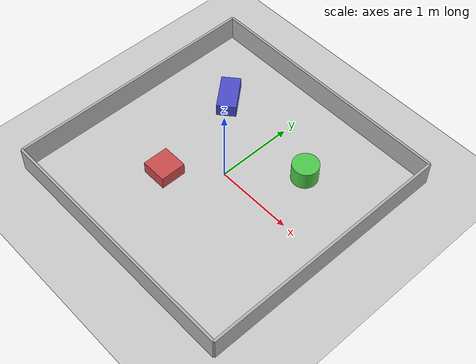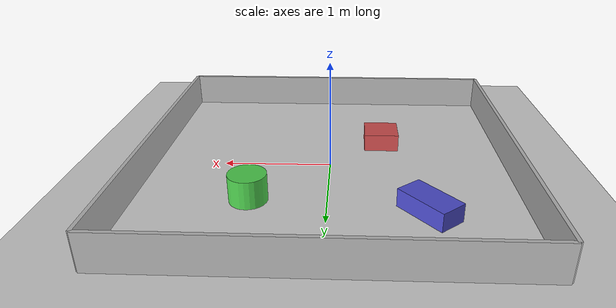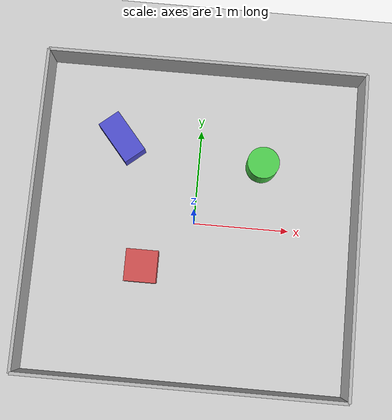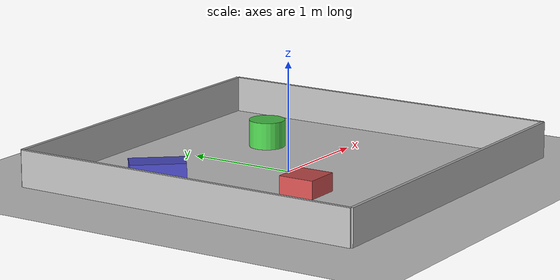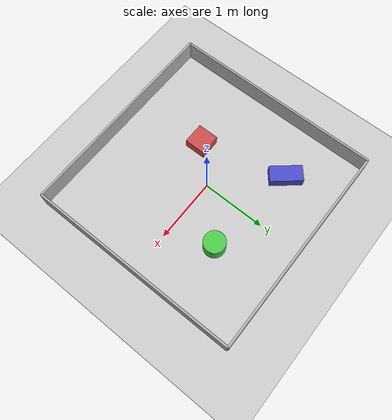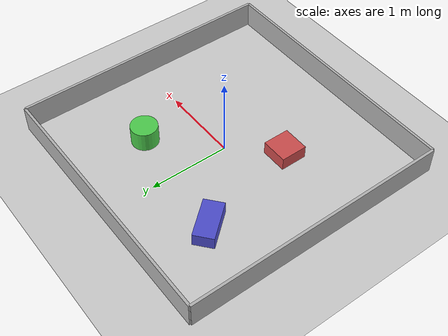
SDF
<sdf version="1.8">
 <world name="jetacker_world">
  <physics name="1ms" type="ignored">
   <max_step_size>0.001</max_step_size>
   <real_time_factor>1.0</real_time_factor>
  </physics>
  <plugin filename="gz-sim-physics-system" name="gz::sim::systems::Physics"/>
  <plugin filename="gz-sim-sensors-system" name="gz::sim::systems::Sensors">
   <render_engine>ogre2</render_engine>
  </plugin>
  <plugin filename="gz-sim-imu-system" name="gz::sim::systems::Imu"/>
  <plugin filename="gz-sim-user-commands-system" name="gz::sim::systems::UserCommands"/>
  <plugin filename="gz-sim-scene-broadcaster-system" name="gz::sim::systems::SceneBroadcaster"/>
  <plugin filename="libWorldStatePublisher" name="gz::sim::systems::WorldStatePublisher">
   <update_frequency>50</update_frequency>
   <model>
    <name>jetacker</name>
    <publish_pose>true</publish_pose>
    <publish_joints>true</publish_joints>
    <joint>front_left_wheel_steering_joint</joint>
    <joint>front_right_wheel_steering_joint</joint>
    <joint>rear_left_wheel_joint</joint>
    <joint>rear_right_wheel_joint</joint>
   </model>
  </plugin>
  <light type="directional" name="sun">
   <pose>0 0 10 0 0 0</pose>
   <diffuse>1 1 1 1</diffuse>
   <specular>0.5 0.5 0.5 1</specular>
   <direction>-0.5 0.1 -0.9</direction>
  </light>
  <model name="ground_plane">
   <static>true</static>
   <link name="link">
    <collision name="collision">
     <geometry><plane><normal>0 0 1</normal><size>100 100</size></plane></geometry>
     <surface><friction><ode><mu>1.0</mu><mu2>1.0</mu2></ode></friction></surface>
    </collision>
    <visual name="visual">
     <geometry><plane><normal>0 0 1</normal><size>100 100</size></plane></geometry>
     <material>
      <ambient>0.8 0.8 0.8 1</ambient>
      <diffuse>0.8 0.8 0.8 1</diffuse>
      <specular>0.1 0.1 0.1 1</specular>
     </material>
    </visual>
   </link>
  </model>
  <model name="wall_north">
   <static>true</static>
   <pose>0.000000 1.666667 0.166667 0 0 0</pose>
   <link name="link">
    <collision name="collision">
     <geometry><box><size>3.333333 0.033333 0.333333</size></box></geometry>
    </collision>
    <visual name="visual">
     <geometry><box><size>3.333333 0.033333 0.333333</size></box></geometry>
     <material><ambient>0.7 0.7 0.7 1</ambient><diffuse>0.7 0.7 0.7 1</diffuse></material>
    </visual>
   </link>
  </model>
  <model name="wall_south">
   <static>true</static>
   <pose>0.000000 -1.666667 0.166667 0 0 0</pose>
   <link name="link">
    <collision name="collision">
     <geometry><box><size>3.333333 0.033333 0.333333</size></box></geometry>
    </collision>
    <visual name="visual">
     <geometry><box><size>3.333333 0.033333 0.333333</size></box></geometry>
     <material><ambient>0.7 0.7 0.7 1</ambient><diffuse>0.7 0.7 0.7 1</diffuse></material>
    </visual>
   </link>
  </model>
  <model name="wall_east">
   <static>true</static>
   <pose>1.666667 0.000000 0.166667 0 0 0</pose>
   <link name="link">
    <collision name="collision">
     <geometry><box><size>0.033333 3.333333 0.333333</size></box></geometry>
    </collision>
    <visual name="visual">
     <geometry><box><size>0.033333 3.333333 0.333333</size></box></geometry>
     <material><ambient>0.7 0.7 0.7 1</ambient><diffuse>0.7 0.7 0.7 1</diffuse></material>
    </visual>
   </link>
  </model>
  <model name="wall_west">
   <static>true</static>
   <pose>-1.666667 0.000000 0.166667 0 0 0</pose>
   <link name="link">
    <collision name="collision">
     <geometry><box><size>0.033333 3.333333 0.333333</size></box></geometry>
    </collision>
    <visual name="visual">
     <geometry><box><size>0.033333 3.333333 0.333333</size></box></geometry>
     <material><ambient>0.7 0.7 0.7 1</ambient><diffuse>0.7 0.7 0.7 1</diffuse></material>
    </visual>
   </link>
  </model>
  <model name="red_box">
   <static>true</static>
   <pose>-0.500000 -0.500000 0.083333 0 0 3.141593</pose>
   <link name="link">
    <collision name="collision">
     <geometry><box><size>0.333333 0.333333 0.166667</size></box></geometry>
    </collision>
    <visual name="visual">
     <geometry><box><size>0.333333 0.333333 0.166667</size></box></geometry>
     <material><ambient>0.5 0.2 0.2 1</ambient><diffuse>0.8 0.3 0.3 1</diffuse></material>
    </visual>
   </link>
  </model>
  <model name="green_cylinder">
   <static>true</static>
   <pose>0.666667 0.666667 0.125000 0 0 3.141593</pose>
   <link name="link">
    <collision name="collision">
     <geometry><cylinder><radius>0.166667</radius><length>0.250000</length></cylinder></geometry>
    </collision>
    <visual name="visual">
     <geometry><cylinder><radius>0.166667</radius><length>0.250000</length></cylinder></geometry>
     <material><ambient>0.2 0.5 0.2 1</ambient><diffuse>0.3 0.8 0.3 1</diffuse></material>
    </visual>
   </link>
  </model>
  <model name="purple_box">
   <static>true</static>
   <pose>-0.833333 0.833333 0.083333 0 0 -2.443461</pose>
   <link name="link">
    <collision name="collision">
     <geometry><box><size>0.250000 0.500000 0.166667</size></box></geometry>
    </collision>
    <visual name="visual">
     <geometry><box><size>0.250000 0.500000 0.166667</size></box></geometry>
     <material><ambient>0.2 0.2 0.5 1</ambient><diffuse>0.3 0.3 0.8 1</diffuse></material>
    </visual>
   </link>
  </model>
 </world>
</sdf>
